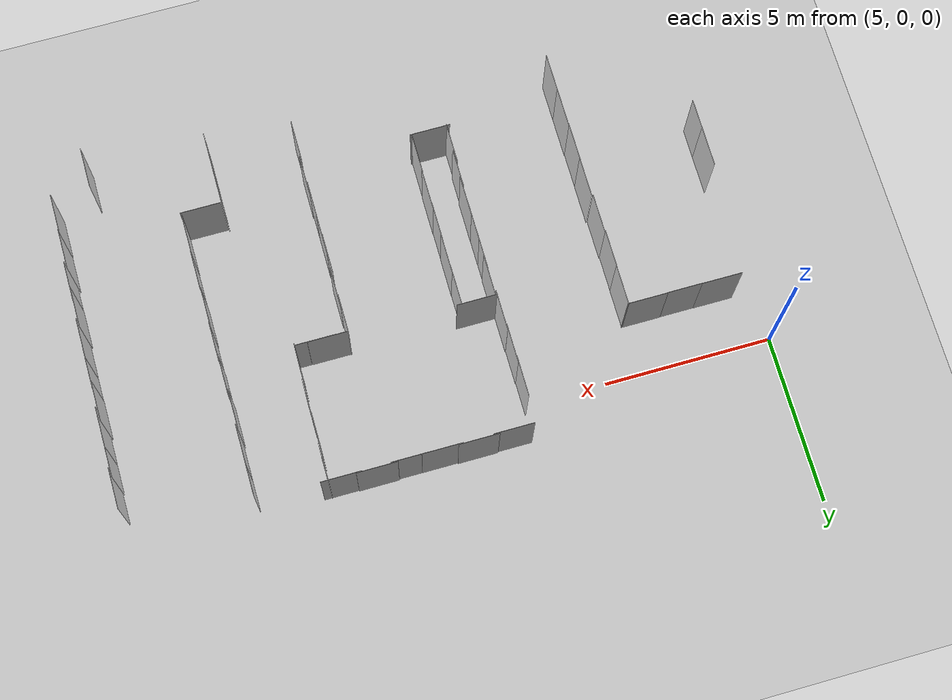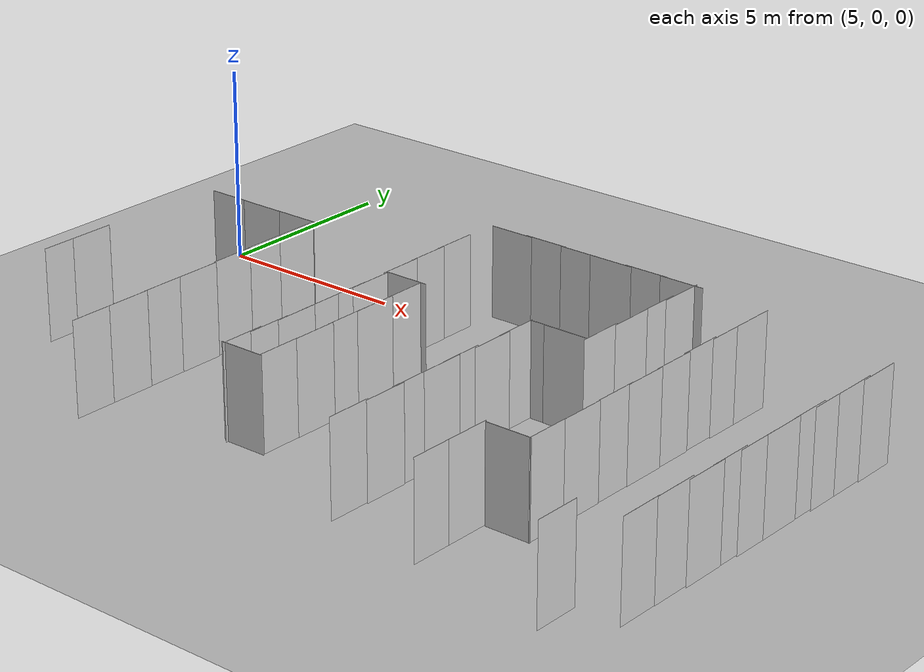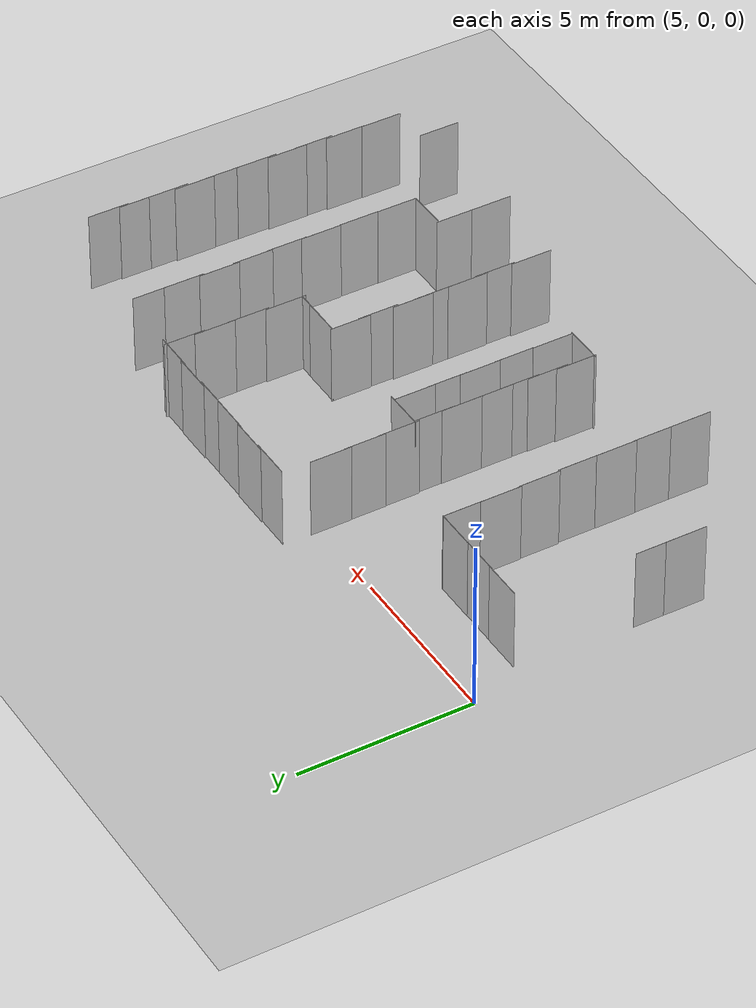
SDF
<sdf version="1.7">
 <world name="default">
  <model name="ground_plane">
   <static>1</static>
   <link name="link">
    <collision name="collision">
     <geometry><plane><normal>0 0 1</normal><size>100 100</size></plane></geometry>
     <surface><friction><ode><mu>100</mu><mu2>50</mu2></ode></friction></surface>
    </collision>
    <visual name="visual">
     <cast_shadows>0</cast_shadows>
     <geometry><plane><normal>0 0 1</normal><size>100 100</size></plane></geometry>
     <material>
      <script><uri>file://media/materials/scripts/gazebo.material</uri><name>Gazebo/Grey</name></script>
     </material>
    </visual>
   </link>
  </model>
  <model name="nist_maze_wall_240_clone_3_clone_5">
   <static>1</static>
   <link name="nist__maze_wall_240_link">
    <collision name="collision">
     <geometry>
      <mesh><uri>model://nist_maze_wall_240/meshes/nist_maze_wall_240.dae</uri><scale>1 1 1</scale></mesh>
     </geometry>
    </collision>
    <visual name="visual">
     <geometry>
      <mesh><uri>model://nist_maze_wall_240/meshes/nist_maze_wall_240.dae</uri><scale>1 1 1</scale></mesh>
     </geometry>
    </visual>
   </link>
   <pose>6.24569 -2.12624 0 0 -0 0</pose>
  </model>
  <model name="nist_maze_wall_240_clone_3_clone_6">
   <static>1</static>
   <link name="nist__maze_wall_240_link">
    <collision name="collision">
     <geometry>
      <mesh><uri>model://nist_maze_wall_240/meshes/nist_maze_wall_240.dae</uri><scale>1 1 1</scale></mesh>
     </geometry>
    </collision>
    <visual name="visual">
     <geometry>
      <mesh><uri>model://nist_maze_wall_240/meshes/nist_maze_wall_240.dae</uri><scale>1 1 1</scale></mesh>
     </geometry>
    </visual>
   </link>
   <pose>7.3074 -2.13235 0 0 -0 0</pose>
  </model>
  <model name="nist_maze_wall_240_clone_3_clone_8">
   <static>1</static>
   <link name="nist__maze_wall_240_link">
    <collision name="collision">
     <geometry>
      <mesh><uri>model://nist_maze_wall_240/meshes/nist_maze_wall_240.dae</uri><scale>1 1 1</scale></mesh>
     </geometry>
    </collision>
    <visual name="visual">
     <geometry>
      <mesh><uri>model://nist_maze_wall_240/meshes/nist_maze_wall_240.dae</uri><scale>1 1 1</scale></mesh>
     </geometry>
    </visual>
   </link>
   <pose>8.46384 -2.12509 0 0 -0 0</pose>
  </model>
  <model name="nist_maze_wall_240_clone_3_clone_5_clone_clone_0_clone">
   <static>1</static>
   <link name="nist__maze_wall_240_link">
    <collision name="collision">
     <geometry>
      <mesh><uri>model://nist_maze_wall_240/meshes/nist_maze_wall_240.dae</uri><scale>1 1 1</scale></mesh>
     </geometry>
    </collision>
    <visual name="visual">
     <geometry>
      <mesh><uri>model://nist_maze_wall_240/meshes/nist_maze_wall_240.dae</uri><scale>1 1 1</scale></mesh>
     </geometry>
    </visual>
   </link>
   <pose>13.1159 -0.314237 0 0 -0 1.57</pose>
  </model>
  <model name="nist_maze_wall_240_clone_3_clone_5_clone_clone_0_clone_1">
   <static>1</static>
   <link name="nist__maze_wall_240_link">
    <collision name="collision">
     <geometry>
      <mesh><uri>model://nist_maze_wall_240/meshes/nist_maze_wall_240.dae</uri><scale>1 1 1</scale></mesh>
     </geometry>
    </collision>
    <visual name="visual">
     <geometry>
      <mesh><uri>model://nist_maze_wall_240/meshes/nist_maze_wall_240.dae</uri><scale>1 1 1</scale></mesh>
     </geometry>
    </visual>
   </link>
   <pose>13.1294 -1.32193 0 0 -0 1.57</pose>
  </model>
  <model name="nist_maze_wall_240_clone_3_clone_5_clone_clone_0_clone_12">
   <static>1</static>
   <link name="nist__maze_wall_240_link">
    <collision name="collision">
     <geometry>
      <mesh><uri>model://nist_maze_wall_240/meshes/nist_maze_wall_240.dae</uri><scale>1 1 1</scale></mesh>
     </geometry>
    </collision>
    <visual name="visual">
     <geometry>
      <mesh><uri>model://nist_maze_wall_240/meshes/nist_maze_wall_240.dae</uri><scale>1 1 1</scale></mesh>
     </geometry>
    </visual>
   </link>
   <pose>9.64027 -2.10411 0 0 -0 1.57</pose>
  </model>
  <model name="nist_maze_wall_240_clone_3_clone_5_clone_clone_0_clone_13">
   <static>1</static>
   <link name="nist__maze_wall_240_link">
    <collision name="collision">
     <geometry>
      <mesh><uri>model://nist_maze_wall_240/meshes/nist_maze_wall_240.dae</uri><scale>1 1 1</scale></mesh>
     </geometry>
    </collision>
    <visual name="visual">
     <geometry>
      <mesh><uri>model://nist_maze_wall_240/meshes/nist_maze_wall_240.dae</uri><scale>1 1 1</scale></mesh>
     </geometry>
    </visual>
   </link>
   <pose>9.63345 -3.20414 0 0 -0 1.57</pose>
  </model>
  <model name="nist_maze_wall_240_clone_3_clone_5_clone_clone_0_clone_14">
   <static>1</static>
   <link name="nist__maze_wall_240_link">
    <collision name="collision">
     <geometry>
      <mesh><uri>model://nist_maze_wall_240/meshes/nist_maze_wall_240.dae</uri><scale>1 1 1</scale></mesh>
     </geometry>
    </collision>
    <visual name="visual">
     <geometry>
      <mesh><uri>model://nist_maze_wall_240/meshes/nist_maze_wall_240.dae</uri><scale>1 1 1</scale></mesh>
     </geometry>
    </visual>
   </link>
   <pose>9.65675 -4.34652 0 0 -0 1.57</pose>
  </model>
  <model name="nist_maze_wall_240_clone_3_clone_5_clone_clone_0_clone_13_clone">
   <static>1</static>
   <link name="nist__maze_wall_240_link">
    <collision name="collision">
     <geometry>
      <mesh><uri>model://nist_maze_wall_240/meshes/nist_maze_wall_240.dae</uri><scale>1 1 1</scale></mesh>
     </geometry>
    </collision>
    <visual name="visual">
     <geometry>
      <mesh><uri>model://nist_maze_wall_240/meshes/nist_maze_wall_240.dae</uri><scale>1 1 1</scale></mesh>
     </geometry>
    </visual>
   </link>
   <pose>13.1461 -2.32121 0 0 -0 1.57</pose>
  </model>
  <model name="nist_maze_wall_240_clone_3_clone_5_clone_clone_0_clone_13_clone_0">
   <static>1</static>
   <link name="nist__maze_wall_240_link">
    <collision name="collision">
     <geometry>
      <mesh><uri>model://nist_maze_wall_240/meshes/nist_maze_wall_240.dae</uri><scale>1 1 1</scale></mesh>
     </geometry>
    </collision>
    <visual name="visual">
     <geometry>
      <mesh><uri>model://nist_maze_wall_240/meshes/nist_maze_wall_240.dae</uri><scale>1 1 1</scale></mesh>
     </geometry>
    </visual>
   </link>
   <pose>13.1919 -3.42972 0 0 -0 1.57</pose>
  </model>
  <model name="nist_maze_wall_240_clone_3_clone_5_clone_clone_0_clone_13_clone_1">
   <static>1</static>
   <link name="nist__maze_wall_240_link">
    <collision name="collision">
     <geometry>
      <mesh><uri>model://nist_maze_wall_240/meshes/nist_maze_wall_240.dae</uri><scale>1 1 1</scale></mesh>
     </geometry>
    </collision>
    <visual name="visual">
     <geometry>
      <mesh><uri>model://nist_maze_wall_240/meshes/nist_maze_wall_240.dae</uri><scale>1 1 1</scale></mesh>
     </geometry>
    </visual>
   </link>
   <pose>13.1789 -4.20467 0 0 -0 1.57</pose>
  </model>
  <model name="nist_maze_wall_240_clone_3_clone_5_clone_clone_0_clone_13_clone_2">
   <static>1</static>
   <link name="nist__maze_wall_240_link">
    <collision name="collision">
     <geometry>
      <mesh><uri>model://nist_maze_wall_240/meshes/nist_maze_wall_240.dae</uri><scale>1 1 1</scale></mesh>
     </geometry>
    </collision>
    <visual name="visual">
     <geometry>
      <mesh><uri>model://nist_maze_wall_240/meshes/nist_maze_wall_240.dae</uri><scale>1 1 1</scale></mesh>
     </geometry>
    </visual>
   </link>
   <pose>13.1817 -5.11785 0 0 -0 1.57</pose>
  </model>
  <model name="nist_maze_wall_240_clone_3_clone_5_clone_clone_0_clone_13_clone_3">
   <static>1</static>
   <link name="nist__maze_wall_240_link">
    <collision name="collision">
     <geometry>
      <mesh><uri>model://nist_maze_wall_240/meshes/nist_maze_wall_240.dae</uri><scale>1 1 1</scale></mesh>
     </geometry>
    </collision>
    <visual name="visual">
     <geometry>
      <mesh><uri>model://nist_maze_wall_240/meshes/nist_maze_wall_240.dae</uri><scale>1 1 1</scale></mesh>
     </geometry>
    </visual>
   </link>
   <pose>13.1876 -5.90809 0 0 -0 1.57</pose>
  </model>
  <model name="nist_maze_wall_240_clone_3_clone_5_clone_clone_0_clone_13_clone_4">
   <static>1</static>
   <link name="nist__maze_wall_240_link">
    <collision name="collision">
     <geometry>
      <mesh><uri>model://nist_maze_wall_240/meshes/nist_maze_wall_240.dae</uri><scale>1 1 1</scale></mesh>
     </geometry>
    </collision>
    <visual name="visual">
     <geometry>
      <mesh><uri>model://nist_maze_wall_240/meshes/nist_maze_wall_240.dae</uri><scale>1 1 1</scale></mesh>
     </geometry>
    </visual>
   </link>
   <pose>13.1636 -6.76236 0 0 -0 1.57</pose>
  </model>
  <model name="nist_maze_wall_240_clone_3_clone_5_clone_clone_0_clone_13_clone_5">
   <static>1</static>
   <link name="nist__maze_wall_240_link">
    <collision name="collision">
     <geometry>
      <mesh><uri>model://nist_maze_wall_240/meshes/nist_maze_wall_240.dae</uri><scale>1 1 1</scale></mesh>
     </geometry>
    </collision>
    <visual name="visual">
     <geometry>
      <mesh><uri>model://nist_maze_wall_240/meshes/nist_maze_wall_240.dae</uri><scale>1 1 1</scale></mesh>
     </geometry>
    </visual>
   </link>
   <pose>13.1272 -7.59511 0 0 -0 1.57</pose>
  </model>
  <model name="nist_maze_wall_240_clone_3_clone_5_clone_clone_0_clone_13_clone_7">
   <static>1</static>
   <link name="nist__maze_wall_240_link">
    <collision name="collision">
     <geometry>
      <mesh><uri>model://nist_maze_wall_240/meshes/nist_maze_wall_240.dae</uri><scale>1 1 1</scale></mesh>
     </geometry>
    </collision>
    <visual name="visual">
     <geometry>
      <mesh><uri>model://nist_maze_wall_240/meshes/nist_maze_wall_240.dae</uri><scale>1 1 1</scale></mesh>
     </geometry>
    </visual>
   </link>
   <pose>9.69701 -5.52262 0 0 -0 1.57</pose>
  </model>
  <model name="nist_maze_wall_240_clone_3_clone_5_clone_clone_0_clone_13_clone_8">
   <static>1</static>
   <link name="nist__maze_wall_240_link">
    <collision name="collision">
     <geometry>
      <mesh><uri>model://nist_maze_wall_240/meshes/nist_maze_wall_240.dae</uri><scale>1 1 1</scale></mesh>
     </geometry>
    </collision>
    <visual name="visual">
     <geometry>
      <mesh><uri>model://nist_maze_wall_240/meshes/nist_maze_wall_240.dae</uri><scale>1 1 1</scale></mesh>
     </geometry>
    </visual>
   </link>
   <pose>9.69218 -6.6435 0 0 -0 1.57</pose>
  </model>
  <model name="nist_maze_wall_240_clone_3_clone_5_clone_clone_0_clone_13_clone_9">
   <static>1</static>
   <link name="nist__maze_wall_240_link">
    <collision name="collision">
     <geometry>
      <mesh><uri>model://nist_maze_wall_240/meshes/nist_maze_wall_240.dae</uri><scale>1 1 1</scale></mesh>
     </geometry>
    </collision>
    <visual name="visual">
     <geometry>
      <mesh><uri>model://nist_maze_wall_240/meshes/nist_maze_wall_240.dae</uri><scale>1 1 1</scale></mesh>
     </geometry>
    </visual>
   </link>
   <pose>9.70378 -7.76361 0 0 -0 1.57</pose>
  </model>
  <model name="nist_maze_wall_240_clone_3_clone_5_clone_clone_0_clone_13_clone_10">
   <static>1</static>
   <link name="nist__maze_wall_240_link">
    <collision name="collision">
     <geometry>
      <mesh><uri>model://nist_maze_wall_240/meshes/nist_maze_wall_240.dae</uri><scale>1 1 1</scale></mesh>
     </geometry>
    </collision>
    <visual name="visual">
     <geometry>
      <mesh><uri>model://nist_maze_wall_240/meshes/nist_maze_wall_240.dae</uri><scale>1 1 1</scale></mesh>
     </geometry>
    </visual>
   </link>
   <pose>9.70284 -8.86276 0 0 -0 1.57</pose>
  </model>
  <model name="nist_maze_wall_240_clone_3_clone_6_clone_2">
   <static>1</static>
   <link name="nist__maze_wall_240_link">
    <collision name="collision">
     <geometry>
      <mesh><uri>model://nist_maze_wall_240/meshes/nist_maze_wall_240.dae</uri><scale>1 1 1</scale></mesh>
     </geometry>
    </collision>
    <visual name="visual">
     <geometry>
      <mesh><uri>model://nist_maze_wall_240/meshes/nist_maze_wall_240.dae</uri><scale>1 1 1</scale></mesh>
     </geometry>
    </visual>
   </link>
   <pose>13.0295 -8.73408 0 0 -0 0</pose>
  </model>
  <model name="nist_maze_wall_240_clone_3_clone_5_clone_clone_0_clone_13_clone_6_clone">
   <static>1</static>
   <link name="nist__maze_wall_240_link">
    <collision name="collision">
     <geometry>
      <mesh><uri>model://nist_maze_wall_240/meshes/nist_maze_wall_240.dae</uri><scale>1 1 1</scale></mesh>
     </geometry>
    </collision>
    <visual name="visual">
     <geometry>
      <mesh><uri>model://nist_maze_wall_240/meshes/nist_maze_wall_240.dae</uri><scale>1 1 1</scale></mesh>
     </geometry>
    </visual>
   </link>
   <pose>14.1805 -7.53822 0 0 -0 1.57</pose>
  </model>
  <model name="nist_maze_wall_240_clone_3_clone_5_clone_clone_0_clone_13_clone_6_clone_0">
   <static>1</static>
   <link name="nist__maze_wall_240_link">
    <collision name="collision">
     <geometry>
      <mesh><uri>model://nist_maze_wall_240/meshes/nist_maze_wall_240.dae</uri><scale>1 1 1</scale></mesh>
     </geometry>
    </collision>
    <visual name="visual">
     <geometry>
      <mesh><uri>model://nist_maze_wall_240/meshes/nist_maze_wall_240.dae</uri><scale>1 1 1</scale></mesh>
     </geometry>
    </visual>
   </link>
   <pose>14.194 -6.39291 0 0 -0 1.57</pose>
  </model>
  <model name="nist_maze_wall_240_clone_3_clone_5_clone_clone_0_clone_13_clone_6_clone_1">
   <static>1</static>
   <link name="nist__maze_wall_240_link">
    <collision name="collision">
     <geometry>
      <mesh><uri>model://nist_maze_wall_240/meshes/nist_maze_wall_240.dae</uri><scale>1 1 1</scale></mesh>
     </geometry>
    </collision>
    <visual name="visual">
     <geometry>
      <mesh><uri>model://nist_maze_wall_240/meshes/nist_maze_wall_240.dae</uri><scale>1 1 1</scale></mesh>
     </geometry>
    </visual>
   </link>
   <pose>14.1856 -5.35042 0 0 -0 1.57</pose>
  </model>
  <model name="nist_maze_wall_240_clone_3_clone_5_clone_clone_0_clone_13_clone_6_clone_2">
   <static>1</static>
   <link name="nist__maze_wall_240_link">
    <collision name="collision">
     <geometry>
      <mesh><uri>model://nist_maze_wall_240/meshes/nist_maze_wall_240.dae</uri><scale>1 1 1</scale></mesh>
     </geometry>
    </collision>
    <visual name="visual">
     <geometry>
      <mesh><uri>model://nist_maze_wall_240/meshes/nist_maze_wall_240.dae</uri><scale>1 1 1</scale></mesh>
     </geometry>
    </visual>
   </link>
   <pose>14.1936 -4.39815 0 0 -0 1.57</pose>
  </model>
  <model name="nist_maze_wall_240_clone_3_clone_5_clone_clone_0_clone_13_clone_6_clone_3">
   <static>1</static>
   <link name="nist__maze_wall_240_link">
    <collision name="collision">
     <geometry>
      <mesh><uri>model://nist_maze_wall_240/meshes/nist_maze_wall_240.dae</uri><scale>1 1 1</scale></mesh>
     </geometry>
    </collision>
    <visual name="visual">
     <geometry>
      <mesh><uri>model://nist_maze_wall_240/meshes/nist_maze_wall_240.dae</uri><scale>1 1 1</scale></mesh>
     </geometry>
    </visual>
   </link>
   <pose>14.1869 -3.41322 0 0 -0 1.57</pose>
  </model>
  <model name="nist_maze_wall_240_clone_3_clone_6_clone_2_clone">
   <static>1</static>
   <link name="nist__maze_wall_240_link">
    <collision name="collision">
     <geometry>
      <mesh><uri>model://nist_maze_wall_240/meshes/nist_maze_wall_240.dae</uri><scale>1 1 1</scale></mesh>
     </geometry>
    </collision>
    <visual name="visual">
     <geometry>
      <mesh><uri>model://nist_maze_wall_240/meshes/nist_maze_wall_240.dae</uri><scale>1 1 1</scale></mesh>
     </geometry>
    </visual>
   </link>
   <pose>13.1328 -3.39721 0 0 -0 0</pose>
  </model>
  <model name="nist_maze_wall_240_clone_3_clone_6_clone_2_clone_clone">
   <static>1</static>
   <link name="nist__maze_wall_240_link">
    <collision name="collision">
     <geometry>
      <mesh><uri>model://nist_maze_wall_240/meshes/nist_maze_wall_240.dae</uri><scale>1 1 1</scale></mesh>
     </geometry>
    </collision>
    <visual name="visual">
     <geometry>
      <mesh><uri>model://nist_maze_wall_240/meshes/nist_maze_wall_240.dae</uri><scale>1 1 1</scale></mesh>
     </geometry>
    </visual>
   </link>
   <pose>13.1626 0.473608 0 0 -0 0</pose>
  </model>
  <model name="nist_maze_wall_240_clone_3_clone_6_clone_2_clone_clone_0">
   <static>1</static>
   <link name="nist__maze_wall_240_link">
    <collision name="collision">
     <geometry>
      <mesh><uri>model://nist_maze_wall_240/meshes/nist_maze_wall_240.dae</uri><scale>1 1 1</scale></mesh>
     </geometry>
    </collision>
    <visual name="visual">
     <geometry>
      <mesh><uri>model://nist_maze_wall_240/meshes/nist_maze_wall_240.dae</uri><scale>1 1 1</scale></mesh>
     </geometry>
    </visual>
   </link>
   <pose>14.1867 0.500571 0 0 -0 0</pose>
  </model>
  <model name="nist_maze_wall_240_clone_3_clone_6_clone_2_clone_clone_1">
   <static>1</static>
   <link name="nist__maze_wall_240_link">
    <collision name="collision">
     <geometry>
      <mesh><uri>model://nist_maze_wall_240/meshes/nist_maze_wall_240.dae</uri><scale>1 1 1</scale></mesh>
     </geometry>
    </collision>
    <visual name="visual">
     <geometry>
      <mesh><uri>model://nist_maze_wall_240/meshes/nist_maze_wall_240.dae</uri><scale>1 1 1</scale></mesh>
     </geometry>
    </visual>
   </link>
   <pose>15.2461 0.480269 0 0 -0 0</pose>
  </model>
  <model name="nist_maze_wall_240_clone_3_clone_6_clone_2_clone_clone_2">
   <static>1</static>
   <link name="nist__maze_wall_240_link">
    <collision name="collision">
     <geometry>
      <mesh><uri>model://nist_maze_wall_240/meshes/nist_maze_wall_240.dae</uri><scale>1 1 1</scale></mesh>
     </geometry>
    </collision>
    <visual name="visual">
     <geometry>
      <mesh><uri>model://nist_maze_wall_240/meshes/nist_maze_wall_240.dae</uri><scale>1 1 1</scale></mesh>
     </geometry>
    </visual>
   </link>
   <pose>16.1215 0.477222 0 0 -0 0</pose>
  </model>
  <model name="nist_maze_wall_240_clone_3_clone_6_clone_2_clone_clone_3">
   <static>1</static>
   <link name="nist__maze_wall_240_link">
    <collision name="collision">
     <geometry>
      <mesh><uri>model://nist_maze_wall_240/meshes/nist_maze_wall_240.dae</uri><scale>1 1 1</scale></mesh>
     </geometry>
    </collision>
    <visual name="visual">
     <geometry>
      <mesh><uri>model://nist_maze_wall_240/meshes/nist_maze_wall_240.dae</uri><scale>1 1 1</scale></mesh>
     </geometry>
    </visual>
   </link>
   <pose>17.1295 0.505548 0 0 -0 0</pose>
  </model>
  <model name="nist_maze_wall_240_clone_3_clone_6_clone_2_clone_clone_4">
   <static>1</static>
   <link name="nist__maze_wall_240_link">
    <collision name="collision">
     <geometry>
      <mesh><uri>model://nist_maze_wall_240/meshes/nist_maze_wall_240.dae</uri><scale>1 1 1</scale></mesh>
     </geometry>
    </collision>
    <visual name="visual">
     <geometry>
      <mesh><uri>model://nist_maze_wall_240/meshes/nist_maze_wall_240.dae</uri><scale>1 1 1</scale></mesh>
     </geometry>
    </visual>
   </link>
   <pose>18.1447 0.486306 0 0 -0 0</pose>
  </model>
  <model name="nist_maze_wall_240_clone_3_clone_5_clone_clone_0_clone_13_clone_6_clone_3_clone_0">
   <static>1</static>
   <link name="nist__maze_wall_240_link">
    <collision name="collision">
     <geometry>
      <mesh><uri>model://nist_maze_wall_240/meshes/nist_maze_wall_240.dae</uri><scale>1 1 1</scale></mesh>
     </geometry>
    </collision>
    <visual name="visual">
     <geometry>
      <mesh><uri>model://nist_maze_wall_240/meshes/nist_maze_wall_240.dae</uri><scale>1 1 1</scale></mesh>
     </geometry>
    </visual>
   </link>
   <pose>17.452 -8.8975 0 0 -0 1.57</pose>
  </model>
  <model name="nist_maze_wall_240_clone_3_clone_5_clone_clone_0_clone_13_clone_6_clone_3_clone_1">
   <static>1</static>
   <link name="nist__maze_wall_240_link">
    <collision name="collision">
     <geometry>
      <mesh><uri>model://nist_maze_wall_240/meshes/nist_maze_wall_240.dae</uri><scale>1 1 1</scale></mesh>
     </geometry>
    </collision>
    <visual name="visual">
     <geometry>
      <mesh><uri>model://nist_maze_wall_240/meshes/nist_maze_wall_240.dae</uri><scale>1 1 1</scale></mesh>
     </geometry>
    </visual>
   </link>
   <pose>17.4924 -7.80353 0 0 -0 1.57</pose>
  </model>
  <model name="nist_maze_wall_240_clone_3_clone_5_clone_clone_0_clone_13_clone_6_clone_3_clone_2">
   <static>1</static>
   <link name="nist__maze_wall_240_link">
    <collision name="collision">
     <geometry>
      <mesh><uri>model://nist_maze_wall_240/meshes/nist_maze_wall_240.dae</uri><scale>1 1 1</scale></mesh>
     </geometry>
    </collision>
    <visual name="visual">
     <geometry>
      <mesh><uri>model://nist_maze_wall_240/meshes/nist_maze_wall_240.dae</uri><scale>1 1 1</scale></mesh>
     </geometry>
    </visual>
   </link>
   <pose>17.469 -6.96065 0 0 -0 1.57</pose>
  </model>
  <model name="nist_maze_wall_240_clone_3_clone_5_clone_clone_0_clone_13_clone_6_clone_3_clone_3">
   <static>1</static>
   <link name="nist__maze_wall_240_link">
    <collision name="collision">
     <geometry>
      <mesh><uri>model://nist_maze_wall_240/meshes/nist_maze_wall_240.dae</uri><scale>1 1 1</scale></mesh>
     </geometry>
    </collision>
    <visual name="visual">
     <geometry>
      <mesh><uri>model://nist_maze_wall_240/meshes/nist_maze_wall_240.dae</uri><scale>1 1 1</scale></mesh>
     </geometry>
    </visual>
   </link>
   <pose>17.4727 -5.94194 0 0 -0 1.57</pose>
  </model>
  <model name="nist_maze_wall_240_clone_3_clone_5_clone_clone_0_clone_13_clone_6_clone_3_clone_4">
   <static>1</static>
   <link name="nist__maze_wall_240_link">
    <collision name="collision">
     <geometry>
      <mesh><uri>model://nist_maze_wall_240/meshes/nist_maze_wall_240.dae</uri><scale>1 1 1</scale></mesh>
     </geometry>
    </collision>
    <visual name="visual">
     <geometry>
      <mesh><uri>model://nist_maze_wall_240/meshes/nist_maze_wall_240.dae</uri><scale>1 1 1</scale></mesh>
     </geometry>
    </visual>
   </link>
   <pose>17.4597 -5.30433 0 0 -0 1.57</pose>
  </model>
  <model name="nist_maze_wall_240_clone_3_clone_5_clone_clone_0_clone_13_clone_6_clone_3_clone_5">
   <static>1</static>
   <link name="nist__maze_wall_240_link">
    <collision name="collision">
     <geometry>
      <mesh><uri>model://nist_maze_wall_240/meshes/nist_maze_wall_240.dae</uri><scale>1 1 1</scale></mesh>
     </geometry>
    </collision>
    <visual name="visual">
     <geometry>
      <mesh><uri>model://nist_maze_wall_240/meshes/nist_maze_wall_240.dae</uri><scale>1 1 1</scale></mesh>
     </geometry>
    </visual>
   </link>
   <pose>17.5084 -4.26689 0 0 -0 1.57</pose>
  </model>
  <model name="nist_maze_wall_240_clone_3_clone_5_clone_clone_0_clone_13_clone_6_clone_3_clone_6">
   <static>1</static>
   <link name="nist__maze_wall_240_link">
    <collision name="collision">
     <geometry>
      <mesh><uri>model://nist_maze_wall_240/meshes/nist_maze_wall_240.dae</uri><scale>1 1 1</scale></mesh>
     </geometry>
    </collision>
    <visual name="visual">
     <geometry>
      <mesh><uri>model://nist_maze_wall_240/meshes/nist_maze_wall_240.dae</uri><scale>1 1 1</scale></mesh>
     </geometry>
    </visual>
   </link>
   <pose>17.487 -3.44225 0 0 -0 1.57</pose>
  </model>
  <model name="nist_maze_wall_240_clone_3_clone_6_clone_2_clone_clone_5">
   <static>1</static>
   <link name="nist__maze_wall_240_link">
    <collision name="collision">
     <geometry>
      <mesh><uri>model://nist_maze_wall_240/meshes/nist_maze_wall_240.dae</uri><scale>1 1 1</scale></mesh>
     </geometry>
    </collision>
    <visual name="visual">
     <geometry>
      <mesh><uri>model://nist_maze_wall_240/meshes/nist_maze_wall_240.dae</uri><scale>1 1 1</scale></mesh>
     </geometry>
    </visual>
   </link>
   <pose>17.4807 -3.48985 0 0 -0 0</pose>
  </model>
  <model name="nist_maze_wall_240_clone_3_clone_6_clone_2_clone_clone_5_clone">
   <static>1</static>
   <link name="nist__maze_wall_240_link">
    <collision name="collision">
     <geometry>
      <mesh><uri>model://nist_maze_wall_240/meshes/nist_maze_wall_240.dae</uri><scale>1 1 1</scale></mesh>
     </geometry>
    </collision>
    <visual name="visual">
     <geometry>
      <mesh><uri>model://nist_maze_wall_240/meshes/nist_maze_wall_240.dae</uri><scale>1 1 1</scale></mesh>
     </geometry>
    </visual>
   </link>
   <pose>17.8541 -3.4968 0 0 -0 0</pose>
  </model>
  <model name="nist_maze_wall_240_clone_3_clone_5_clone_clone_0_clone_13_clone_6_clone_3_clone_6_clone">
   <static>1</static>
   <link name="nist__maze_wall_240_link">
    <collision name="collision">
     <geometry>
      <mesh><uri>model://nist_maze_wall_240/meshes/nist_maze_wall_240.dae</uri><scale>1 1 1</scale></mesh>
     </geometry>
    </collision>
    <visual name="visual">
     <geometry>
      <mesh><uri>model://nist_maze_wall_240/meshes/nist_maze_wall_240.dae</uri><scale>1 1 1</scale></mesh>
     </geometry>
    </visual>
   </link>
   <pose>19.053 -2.39471 0 0 -0 1.57</pose>
  </model>
  <model name="nist_maze_wall_240_clone_3_clone_5_clone_clone_0_clone_13_clone_6_clone_3_clone_6_clone_0">
   <static>1</static>
   <link name="nist__maze_wall_240_link">
    <collision name="collision">
     <geometry>
      <mesh><uri>model://nist_maze_wall_240/meshes/nist_maze_wall_240.dae</uri><scale>1 1 1</scale></mesh>
     </geometry>
    </collision>
    <visual name="visual">
     <geometry>
      <mesh><uri>model://nist_maze_wall_240/meshes/nist_maze_wall_240.dae</uri><scale>1 1 1</scale></mesh>
     </geometry>
    </visual>
   </link>
   <pose>19.0926 -1.30642 0 0 -0 1.57</pose>
  </model>
  <model name="nist_maze_wall_240_clone_3_clone_5_clone_clone_0_clone_13_clone_6_clone_3_clone_6_clone_1">
   <static>1</static>
   <link name="nist__maze_wall_240_link">
    <collision name="collision">
     <geometry>
      <mesh><uri>model://nist_maze_wall_240/meshes/nist_maze_wall_240.dae</uri><scale>1 1 1</scale></mesh>
     </geometry>
    </collision>
    <visual name="visual">
     <geometry>
      <mesh><uri>model://nist_maze_wall_240/meshes/nist_maze_wall_240.dae</uri><scale>1 1 1</scale></mesh>
     </geometry>
    </visual>
   </link>
   <pose>19.0833 -0.310917 0 0 -0 1.57</pose>
  </model>
  <model name="nist_maze_wall_240_clone_3_clone_5_clone_clone_0_clone_13_clone_6_clone_3_clone_6_clone_2">
   <static>1</static>
   <link name="nist__maze_wall_240_link">
    <collision name="collision">
     <geometry>
      <mesh><uri>model://nist_maze_wall_240/meshes/nist_maze_wall_240.dae</uri><scale>1 1 1</scale></mesh>
     </geometry>
    </collision>
    <visual name="visual">
     <geometry>
      <mesh><uri>model://nist_maze_wall_240/meshes/nist_maze_wall_240.dae</uri><scale>1 1 1</scale></mesh>
     </geometry>
    </visual>
   </link>
   <pose>19.118 0.568454 0 0 -0 1.57</pose>
  </model>
  <model name="nist_maze_wall_240_clone_3_clone_5_clone_clone_0_clone_13_clone_11_clone_11">
   <static>1</static>
   <link name="nist__maze_wall_240_link">
    <collision name="collision">
     <geometry>
      <mesh><uri>model://nist_maze_wall_240/meshes/nist_maze_wall_240.dae</uri><scale>1 1 1</scale></mesh>
     </geometry>
    </collision>
    <visual name="visual">
     <geometry>
      <mesh><uri>model://nist_maze_wall_240/meshes/nist_maze_wall_240.dae</uri><scale>1 1 1</scale></mesh>
     </geometry>
    </visual>
   </link>
   <pose>5.99699 -6.34027 0 0 -0 1.57</pose>
  </model>
  <model name="nist_maze_wall_240_clone_3_clone_5_clone_clone_0_clone_13_clone_11_clone_12">
   <static>1</static>
   <link name="nist__maze_wall_240_link">
    <collision name="collision">
     <geometry>
      <mesh><uri>model://nist_maze_wall_240/meshes/nist_maze_wall_240.dae</uri><scale>1 1 1</scale></mesh>
     </geometry>
    </collision>
    <visual name="visual">
     <geometry>
      <mesh><uri>model://nist_maze_wall_240/meshes/nist_maze_wall_240.dae</uri><scale>1 1 1</scale></mesh>
     </geometry>
    </visual>
   </link>
   <pose>5.99949 -5.46334 0 0 -0 1.57</pose>
  </model>
  <model name="nist_maze_wall_240_clone_3_clone_5_clone_clone_0_clone_13_clone_6_clone_3_clone_clone_2">
   <static>1</static>
   <link name="nist__maze_wall_240_link">
    <collision name="collision">
     <geometry>
      <mesh><uri>model://nist_maze_wall_240/meshes/nist_maze_wall_240.dae</uri><scale>1 1 1</scale></mesh>
     </geometry>
    </collision>
    <visual name="visual">
     <geometry>
      <mesh><uri>model://nist_maze_wall_240/meshes/nist_maze_wall_240.dae</uri><scale>1 1 1</scale></mesh>
     </geometry>
    </visual>
   </link>
   <pose>19.9961 -9.20849 0 0 -0 1.57</pose>
  </model>
  <model name="nist_maze_wall_240_clone_3_clone_5_clone_clone_0_clone_13_clone_6_clone_3_clone_clone_3">
   <static>1</static>
   <link name="nist__maze_wall_240_link">
    <collision name="collision">
     <geometry>
      <mesh><uri>model://nist_maze_wall_240/meshes/nist_maze_wall_240.dae</uri><scale>1 1 1</scale></mesh>
     </geometry>
    </collision>
    <visual name="visual">
     <geometry>
      <mesh><uri>model://nist_maze_wall_240/meshes/nist_maze_wall_240.dae</uri><scale>1 1 1</scale></mesh>
     </geometry>
    </visual>
   </link>
   <pose>19.9992 -8.13157 0 0 -0 1.57</pose>
  </model>
  <model name="nist_maze_wall_240_clone_3_clone_6_clone_2_clone_clone_5_clone_clone">
   <static>1</static>
   <link name="nist__maze_wall_240_link">
    <collision name="collision">
     <geometry>
      <mesh><uri>model://nist_maze_wall_240/meshes/nist_maze_wall_240.dae</uri><scale>1 1 1</scale></mesh>
     </geometry>
    </collision>
    <visual name="visual">
     <geometry>
      <mesh><uri>model://nist_maze_wall_240/meshes/nist_maze_wall_240.dae</uri><scale>1 1 1</scale></mesh>
     </geometry>
    </visual>
   </link>
   <pose>20.0226 -8.19927 0 0 -0 0</pose>
  </model>
  <model name="nist_maze_wall_240_clone_3_clone_5_clone_clone_0_clone_13_clone_6_clone_3_clone_clone_3_clone">
   <static>1</static>
   <link name="nist__maze_wall_240_link">
    <collision name="collision">
     <geometry>
      <mesh><uri>model://nist_maze_wall_240/meshes/nist_maze_wall_240.dae</uri><scale>1 1 1</scale></mesh>
     </geometry>
    </collision>
    <visual name="visual">
     <geometry>
      <mesh><uri>model://nist_maze_wall_240/meshes/nist_maze_wall_240.dae</uri><scale>1 1 1</scale></mesh>
     </geometry>
    </visual>
   </link>
   <pose>21.1937 -7.02488 0 0 -0 1.57</pose>
  </model>
  <model name="nist_maze_wall_240_clone_3_clone_5_clone_clone_0_clone_13_clone_6_clone_3_clone_clone_3_clone_0">
   <static>1</static>
   <link name="nist__maze_wall_240_link">
    <collision name="collision">
     <geometry>
      <mesh><uri>model://nist_maze_wall_240/meshes/nist_maze_wall_240.dae</uri><scale>1 1 1</scale></mesh>
     </geometry>
    </collision>
    <visual name="visual">
     <geometry>
      <mesh><uri>model://nist_maze_wall_240/meshes/nist_maze_wall_240.dae</uri><scale>1 1 1</scale></mesh>
     </geometry>
    </visual>
   </link>
   <pose>21.2055 -5.86421 0 0 -0 1.57</pose>
  </model>
  <model name="nist_maze_wall_240_clone_3_clone_5_clone_clone_0_clone_13_clone_6_clone_3_clone_clone_3_clone_1">
   <static>1</static>
   <link name="nist__maze_wall_240_link">
    <collision name="collision">
     <geometry>
      <mesh><uri>model://nist_maze_wall_240/meshes/nist_maze_wall_240.dae</uri><scale>1 1 1</scale></mesh>
     </geometry>
    </collision>
    <visual name="visual">
     <geometry>
      <mesh><uri>model://nist_maze_wall_240/meshes/nist_maze_wall_240.dae</uri><scale>1 1 1</scale></mesh>
     </geometry>
    </visual>
   </link>
   <pose>21.1896 -4.68849 0 0 -0 1.57</pose>
  </model>
  <model name="nist_maze_wall_240_clone_3_clone_5_clone_clone_0_clone_13_clone_6_clone_3_clone_clone_3_clone_2">
   <static>1</static>
   <link name="nist__maze_wall_240_link">
    <collision name="collision">
     <geometry>
      <mesh><uri>model://nist_maze_wall_240/meshes/nist_maze_wall_240.dae</uri><scale>1 1 1</scale></mesh>
     </geometry>
    </collision>
    <visual name="visual">
     <geometry>
      <mesh><uri>model://nist_maze_wall_240/meshes/nist_maze_wall_240.dae</uri><scale>1 1 1</scale></mesh>
     </geometry>
    </visual>
   </link>
   <pose>21.2064 -3.65803 0 0 -0 1.57</pose>
  </model>
  <model name="nist_maze_wall_240_clone_3_clone_5_clone_clone_0_clone_13_clone_6_clone_3_clone_clone_3_clone_3">
   <static>1</static>
   <link name="nist__maze_wall_240_link">
    <collision name="collision">
     <geometry>
      <mesh><uri>model://nist_maze_wall_240/meshes/nist_maze_wall_240.dae</uri><scale>1 1 1</scale></mesh>
     </geometry>
    </collision>
    <visual name="visual">
     <geometry>
      <mesh><uri>model://nist_maze_wall_240/meshes/nist_maze_wall_240.dae</uri><scale>1 1 1</scale></mesh>
     </geometry>
    </visual>
   </link>
   <pose>21.19 -2.61934 0 0 -0 1.57</pose>
  </model>
  <model name="nist_maze_wall_240_clone_3_clone_5_clone_clone_0_clone_13_clone_6_clone_3_clone_clone_3_clone_4">
   <static>1</static>
   <link name="nist__maze_wall_240_link">
    <collision name="collision">
     <geometry>
      <mesh><uri>model://nist_maze_wall_240/meshes/nist_maze_wall_240.dae</uri><scale>1 1 1</scale></mesh>
     </geometry>
    </collision>
    <visual name="visual">
     <geometry>
      <mesh><uri>model://nist_maze_wall_240/meshes/nist_maze_wall_240.dae</uri><scale>1 1 1</scale></mesh>
     </geometry>
    </visual>
   </link>
   <pose>21.161 -1.60022 0 0 -0 1.57</pose>
  </model>
  <model name="nist_maze_wall_240_clone_3_clone_5_clone_clone_0_clone_13_clone_6_clone_3_clone_clone_3_clone_5">
   <static>1</static>
   <link name="nist__maze_wall_240_link">
    <collision name="collision">
     <geometry>
      <mesh><uri>model://nist_maze_wall_240/meshes/nist_maze_wall_240.dae</uri><scale>1 1 1</scale></mesh>
     </geometry>
    </collision>
    <visual name="visual">
     <geometry>
      <mesh><uri>model://nist_maze_wall_240/meshes/nist_maze_wall_240.dae</uri><scale>1 1 1</scale></mesh>
     </geometry>
    </visual>
   </link>
   <pose>21.1994 -0.563356 0 0 -0 1.57</pose>
  </model>
  <model name="nist_maze_wall_240_clone_3_clone_5_clone_clone_0_clone_13_clone_6_clone_3_clone_clone_3_clone_6">
   <static>1</static>
   <link name="nist__maze_wall_240_link">
    <collision name="collision">
     <geometry>
      <mesh><uri>model://nist_maze_wall_240/meshes/nist_maze_wall_240.dae</uri><scale>1 1 1</scale></mesh>
     </geometry>
    </collision>
    <visual name="visual">
     <geometry>
      <mesh><uri>model://nist_maze_wall_240/meshes/nist_maze_wall_240.dae</uri><scale>1 1 1</scale></mesh>
     </geometry>
    </visual>
   </link>
   <pose>21.2017 0.355203 0 0 -0 1.57</pose>
  </model>
  <model name="nist_maze_wall_240_clone_3_clone_5_clone_clone_0_clone_13_clone_6_clone_3_clone_clone_0_clone_4">
   <static>1</static>
   <link name="nist__maze_wall_240_link">
    <collision name="collision">
     <geometry>
      <mesh><uri>model://nist_maze_wall_240/meshes/nist_maze_wall_240.dae</uri><scale>1 1 1</scale></mesh>
     </geometry>
    </collision>
    <visual name="visual">
     <geometry>
      <mesh><uri>model://nist_maze_wall_240/meshes/nist_maze_wall_240.dae</uri><scale>1 1 1</scale></mesh>
     </geometry>
    </visual>
   </link>
   <pose>23.5373 -9.71657 0 0 -0 1.57</pose>
  </model>
  <model name="nist_maze_wall_240_clone_3_clone_5_clone_clone_0_clone_13_clone_6_clone_3_clone_clone_3_clone_0_clone">
   <static>1</static>
   <link name="nist__maze_wall_240_link">
    <collision name="collision">
     <geometry>
      <mesh><uri>model://nist_maze_wall_240/meshes/nist_maze_wall_240.dae</uri><scale>1 1 1</scale></mesh>
     </geometry>
    </collision>
    <visual name="visual">
     <geometry>
      <mesh><uri>model://nist_maze_wall_240/meshes/nist_maze_wall_240.dae</uri><scale>1 1 1</scale></mesh>
     </geometry>
    </visual>
   </link>
   <pose>24.685 -8.57349 0 0 -0 1.57</pose>
  </model>
  <model name="nist_maze_wall_240_clone_3_clone_5_clone_clone_0_clone_13_clone_6_clone_3_clone_clone_3_clone_0_clone_0">
   <static>1</static>
   <link name="nist__maze_wall_240_link">
    <collision name="collision">
     <geometry>
      <mesh><uri>model://nist_maze_wall_240/meshes/nist_maze_wall_240.dae</uri><scale>1 1 1</scale></mesh>
     </geometry>
    </collision>
    <visual name="visual">
     <geometry>
      <mesh><uri>model://nist_maze_wall_240/meshes/nist_maze_wall_240.dae</uri><scale>1 1 1</scale></mesh>
     </geometry>
    </visual>
   </link>
   <pose>24.7008 -7.47478 0 0 -0 1.57</pose>
  </model>
  <model name="nist_maze_wall_240_clone_3_clone_5_clone_clone_0_clone_13_clone_6_clone_3_clone_clone_3_clone_0_clone_1">
   <static>1</static>
   <link name="nist__maze_wall_240_link">
    <collision name="collision">
     <geometry>
      <mesh><uri>model://nist_maze_wall_240/meshes/nist_maze_wall_240.dae</uri><scale>1 1 1</scale></mesh>
     </geometry>
    </collision>
    <visual name="visual">
     <geometry>
      <mesh><uri>model://nist_maze_wall_240/meshes/nist_maze_wall_240.dae</uri><scale>1 1 1</scale></mesh>
     </geometry>
    </visual>
   </link>
   <pose>24.7543 -6.48878 0 0 -0 1.57</pose>
  </model>
  <model name="nist_maze_wall_240_clone_3_clone_5_clone_clone_0_clone_13_clone_6_clone_3_clone_clone_3_clone_0_clone_2">
   <static>1</static>
   <link name="nist__maze_wall_240_link">
    <collision name="collision">
     <geometry>
      <mesh><uri>model://nist_maze_wall_240/meshes/nist_maze_wall_240.dae</uri><scale>1 1 1</scale></mesh>
     </geometry>
    </collision>
    <visual name="visual">
     <geometry>
      <mesh><uri>model://nist_maze_wall_240/meshes/nist_maze_wall_240.dae</uri><scale>1 1 1</scale></mesh>
     </geometry>
    </visual>
   </link>
   <pose>24.745 -5.68383 0 0 -0 1.57</pose>
  </model>
  <model name="nist_maze_wall_240_clone_3_clone_5_clone_clone_0_clone_13_clone_6_clone_3_clone_clone_3_clone_0_clone_3">
   <static>1</static>
   <link name="nist__maze_wall_240_link">
    <collision name="collision">
     <geometry>
      <mesh><uri>model://nist_maze_wall_240/meshes/nist_maze_wall_240.dae</uri><scale>1 1 1</scale></mesh>
     </geometry>
    </collision>
    <visual name="visual">
     <geometry>
      <mesh><uri>model://nist_maze_wall_240/meshes/nist_maze_wall_240.dae</uri><scale>1 1 1</scale></mesh>
     </geometry>
    </visual>
   </link>
   <pose>24.7893 -4.75791 0 0 -0 1.57</pose>
  </model>
  <model name="nist_maze_wall_240_clone_3_clone_5_clone_clone_0_clone_13_clone_6_clone_3_clone_clone_3_clone_0_clone_4">
   <static>1</static>
   <link name="nist__maze_wall_240_link">
    <collision name="collision">
     <geometry>
      <mesh><uri>model://nist_maze_wall_240/meshes/nist_maze_wall_240.dae</uri><scale>1 1 1</scale></mesh>
     </geometry>
    </collision>
    <visual name="visual">
     <geometry>
      <mesh><uri>model://nist_maze_wall_240/meshes/nist_maze_wall_240.dae</uri><scale>1 1 1</scale></mesh>
     </geometry>
    </visual>
   </link>
   <pose>24.7944 -3.82139 0 0 -0 1.57</pose>
  </model>
  <model name="nist_maze_wall_240_clone_3_clone_5_clone_clone_0_clone_13_clone_6_clone_3_clone_clone_3_clone_0_clone_5">
   <static>1</static>
   <link name="nist__maze_wall_240_link">
    <collision name="collision">
     <geometry>
      <mesh><uri>model://nist_maze_wall_240/meshes/nist_maze_wall_240.dae</uri><scale>1 1 1</scale></mesh>
     </geometry>
    </collision>
    <visual name="visual">
     <geometry>
      <mesh><uri>model://nist_maze_wall_240/meshes/nist_maze_wall_240.dae</uri><scale>1 1 1</scale></mesh>
     </geometry>
    </visual>
   </link>
   <pose>24.7854 -2.86045 0 0 -0 1.57</pose>
  </model>
  <model name="nist_maze_wall_240_clone_3_clone_5_clone_clone_0_clone_13_clone_6_clone_3_clone_clone_3_clone_0_clone_6">
   <static>1</static>
   <link name="nist__maze_wall_240_link">
    <collision name="collision">
     <geometry>
      <mesh><uri>model://nist_maze_wall_240/meshes/nist_maze_wall_240.dae</uri><scale>1 1 1</scale></mesh>
     </geometry>
    </collision>
    <visual name="visual">
     <geometry>
      <mesh><uri>model://nist_maze_wall_240/meshes/nist_maze_wall_240.dae</uri><scale>1 1 1</scale></mesh>
     </geometry>
    </visual>
   </link>
   <pose>24.8354 -2.09872 0 0 -0 1.57</pose>
  </model>
  <model name="nist_maze_wall_240_clone_3_clone_5_clone_clone_0_clone_13_clone_6_clone_3_clone_clone_3_clone_0_clone_7">
   <static>1</static>
   <link name="nist__maze_wall_240_link">
    <collision name="collision">
     <geometry>
      <mesh><uri>model://nist_maze_wall_240/meshes/nist_maze_wall_240.dae</uri><scale>1 1 1</scale></mesh>
     </geometry>
    </collision>
    <visual name="visual">
     <geometry>
      <mesh><uri>model://nist_maze_wall_240/meshes/nist_maze_wall_240.dae</uri><scale>1 1 1</scale></mesh>
     </geometry>
    </visual>
   </link>
   <pose>24.8387 -1.21 0 0 -0 1.57</pose>
  </model>
  <model name="nist_maze_wall_240_clone_3_clone_5_clone_clone_0_clone_13_clone_6_clone_3_clone_clone_3_clone_0_clone_8">
   <static>1</static>
   <link name="nist__maze_wall_240_link">
    <collision name="collision">
     <geometry>
      <mesh><uri>model://nist_maze_wall_240/meshes/nist_maze_wall_240.dae</uri><scale>1 1 1</scale></mesh>
     </geometry>
    </collision>
    <visual name="visual">
     <geometry>
      <mesh><uri>model://nist_maze_wall_240/meshes/nist_maze_wall_240.dae</uri><scale>1 1 1</scale></mesh>
     </geometry>
    </visual>
   </link>
   <pose>24.8759 -0.297896 0 0 -0 1.57</pose>
  </model>
 </world>
</sdf>
